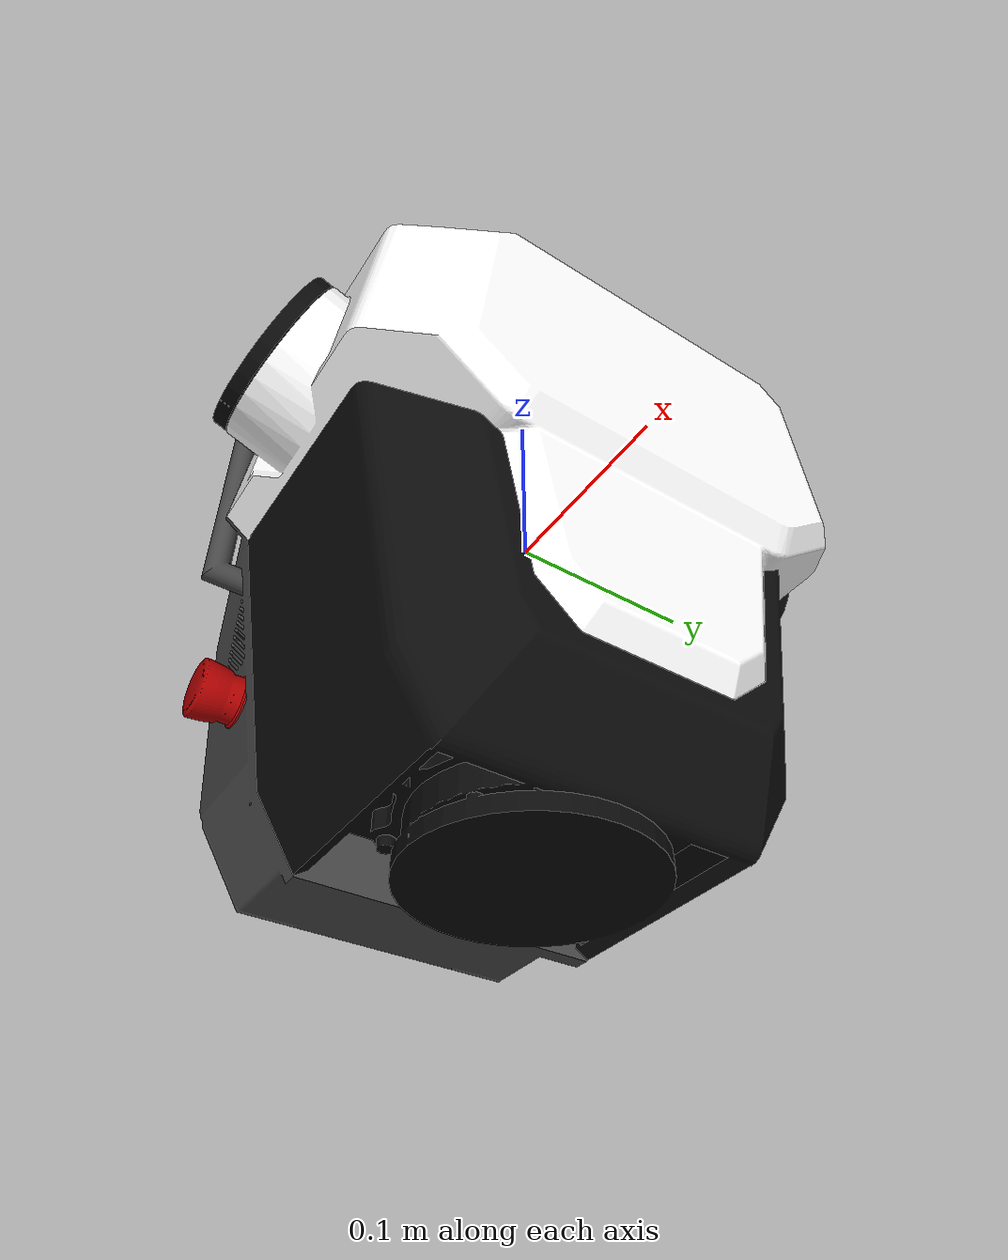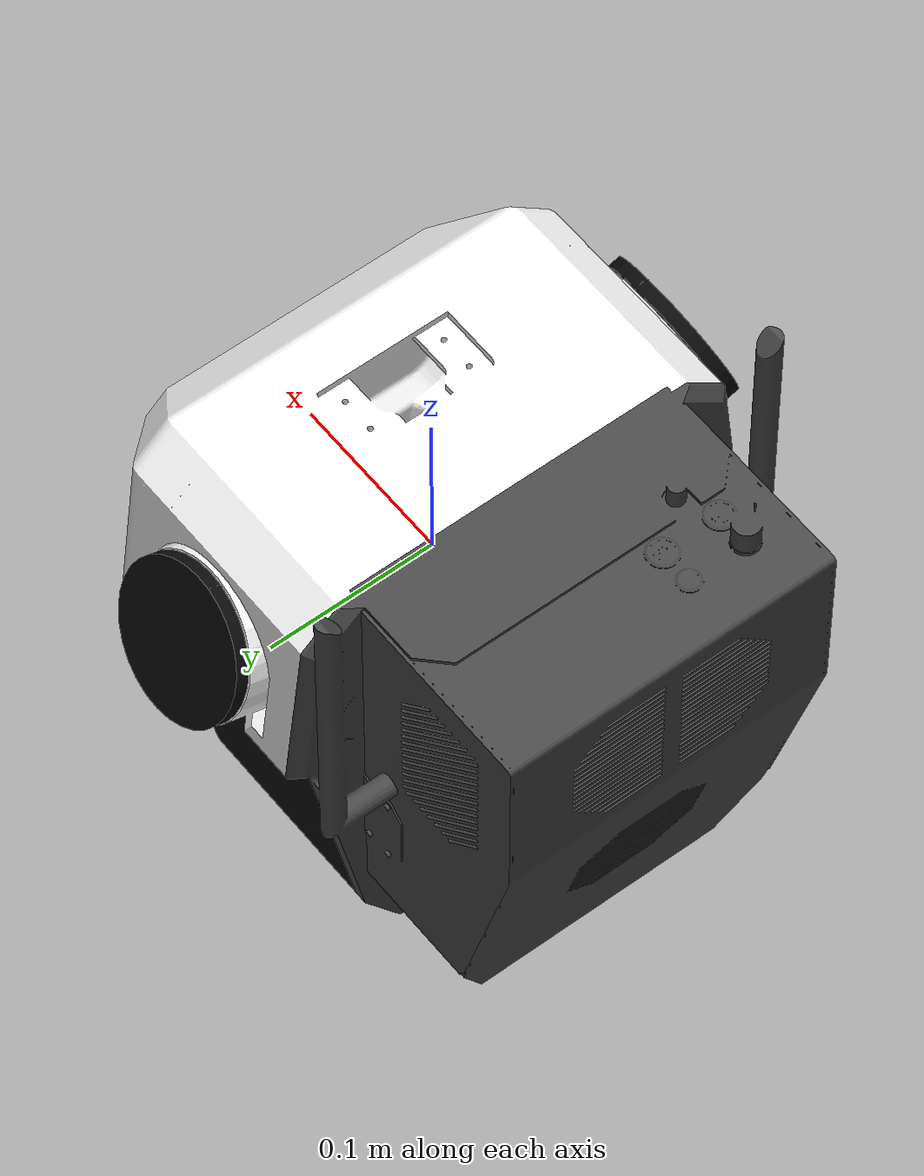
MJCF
<mujoco model="LINK_6">
  <default>
    <default class="visual">
      <geom group="2" type="mesh" contype="0" conaffinity="0"/>
    </default>
    <default class="collision">
      <geom group="3" type="mesh"/>
    </default>
  </default>
  <asset>
    <material name="10,10,10.006" specular="0.0" shininess="0.225" rgba="0.039216 0.039216 0.039216 1.000000"/>
    <material name="178,0,0" specular="0.0" shininess="0.225" rgba="0.698039 0.000000 0.000000 1.000000"/>
    <material name="191,191,191.014" specular="0.0" shininess="0.225" rgba="0.749020 0.749020 0.749020 1.000000"/>
    <material name="254,254,255.011" specular="0.0" shininess="0.225" rgba="0.996078 0.996078 1.000000 1.000000"/>
    <material name="254,254,255_1" specular="0.0" shininess="0.225" rgba="0.996078 0.996078 1.000000 1.000000"/>
    <material name="70,70,70.004" specular="0.0" shininess="0.225" rgba="0.274510 0.274510 0.274510 1.000000"/>
    <mesh file="LINK_6_0.obj"/>
    <mesh file="LINK_6_1.obj"/>
    <mesh file="LINK_6_2.obj"/>
    <mesh file="LINK_6_3.obj"/>
    <mesh file="LINK_6_4.obj"/>
    <mesh file="LINK_6_5.obj"/>
  </asset>
  <worldbody>
    <body name="LINK_6">
      <geom mesh="LINK_6_0" material="254,254,255_1" class="visual"/>
      <geom mesh="LINK_6_1" material="191,191,191.014" class="visual"/>
      <geom mesh="LINK_6_2" material="70,70,70.004" class="visual"/>
      <geom mesh="LINK_6_3" material="178,0,0" class="visual"/>
      <geom mesh="LINK_6_4" material="10,10,10.006" class="visual"/>
      <geom mesh="LINK_6_5" material="254,254,255.011" class="visual"/>
      <geom mesh="LINK_6_0" class="collision"/>
      <geom mesh="LINK_6_1" class="collision"/>
      <geom mesh="LINK_6_2" class="collision"/>
      <geom mesh="LINK_6_3" class="collision"/>
      <geom mesh="LINK_6_4" class="collision"/>
      <geom mesh="LINK_6_5" class="collision"/>
    </body>
  </worldbody>
</mujoco>
